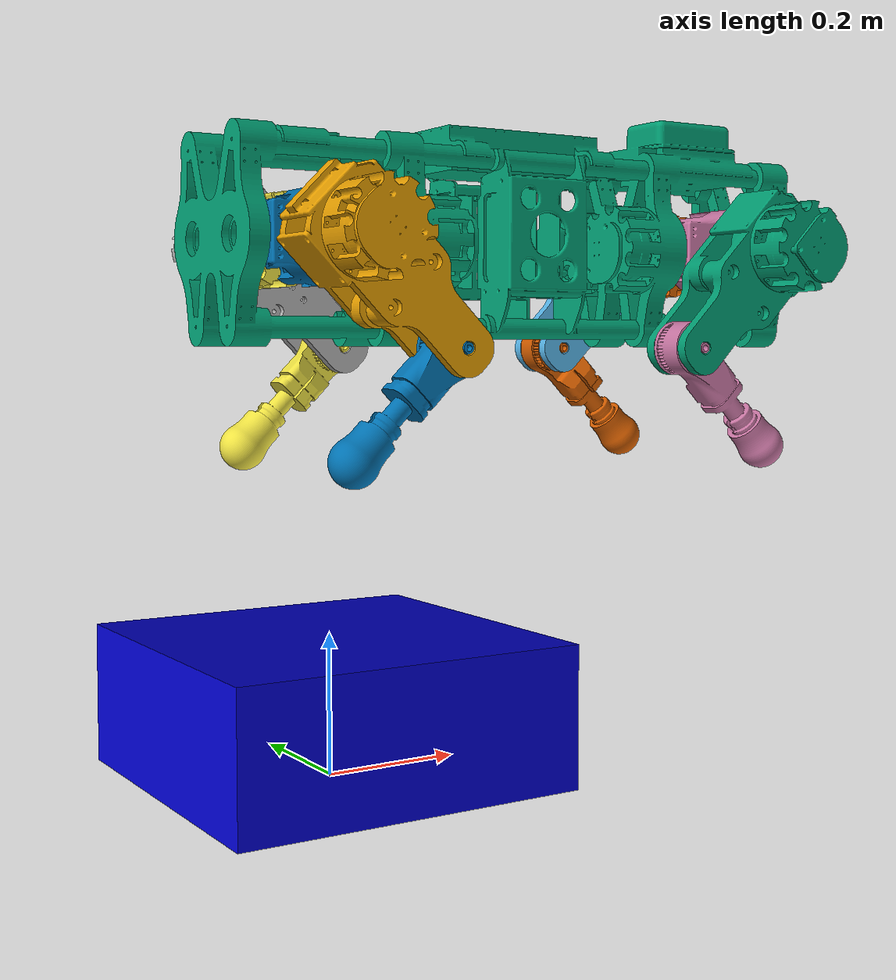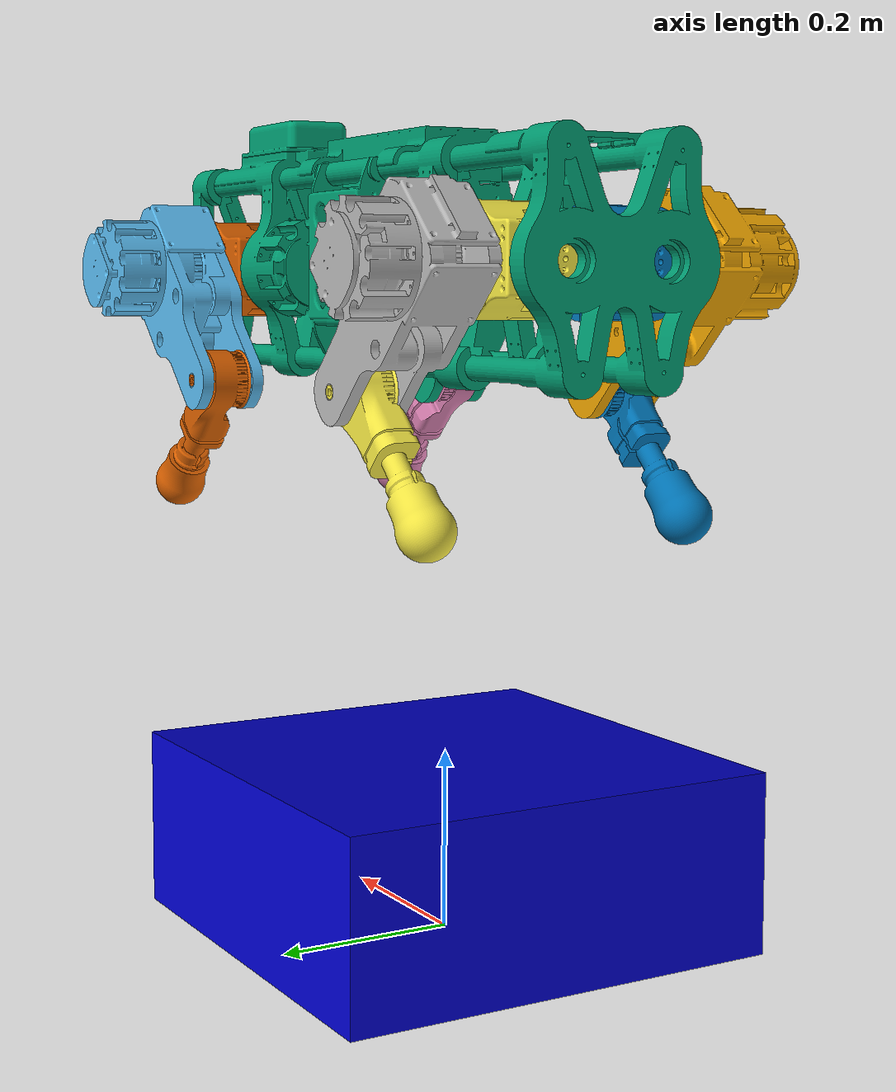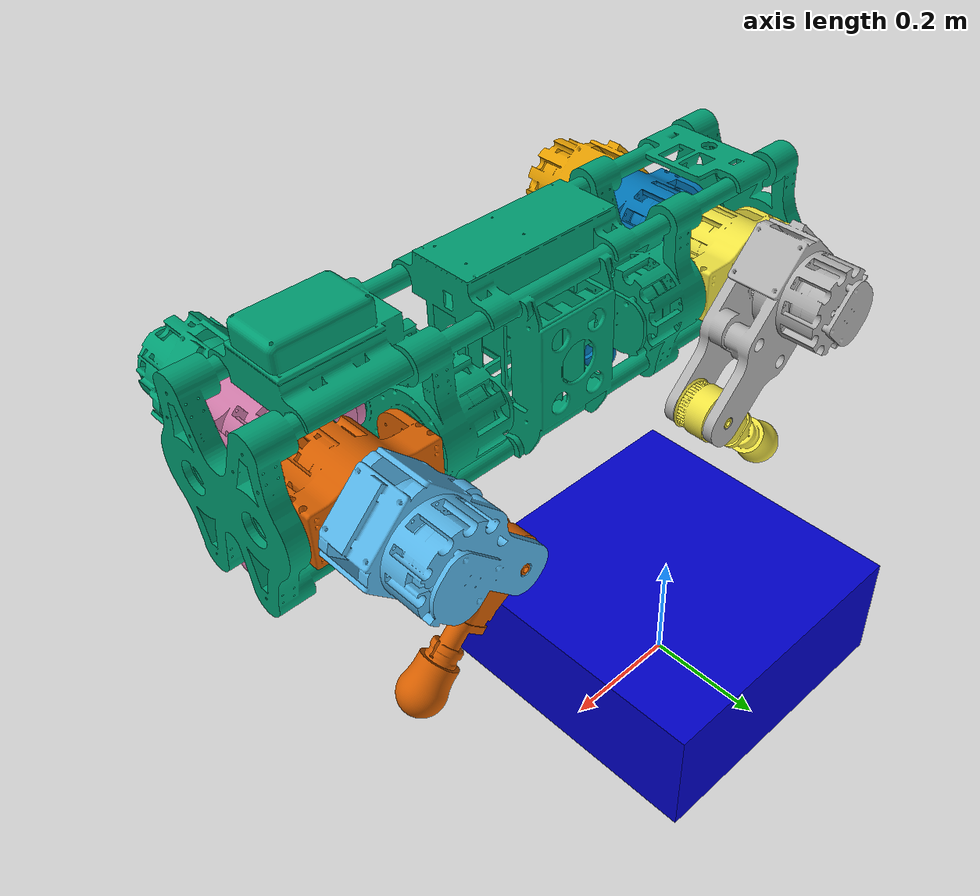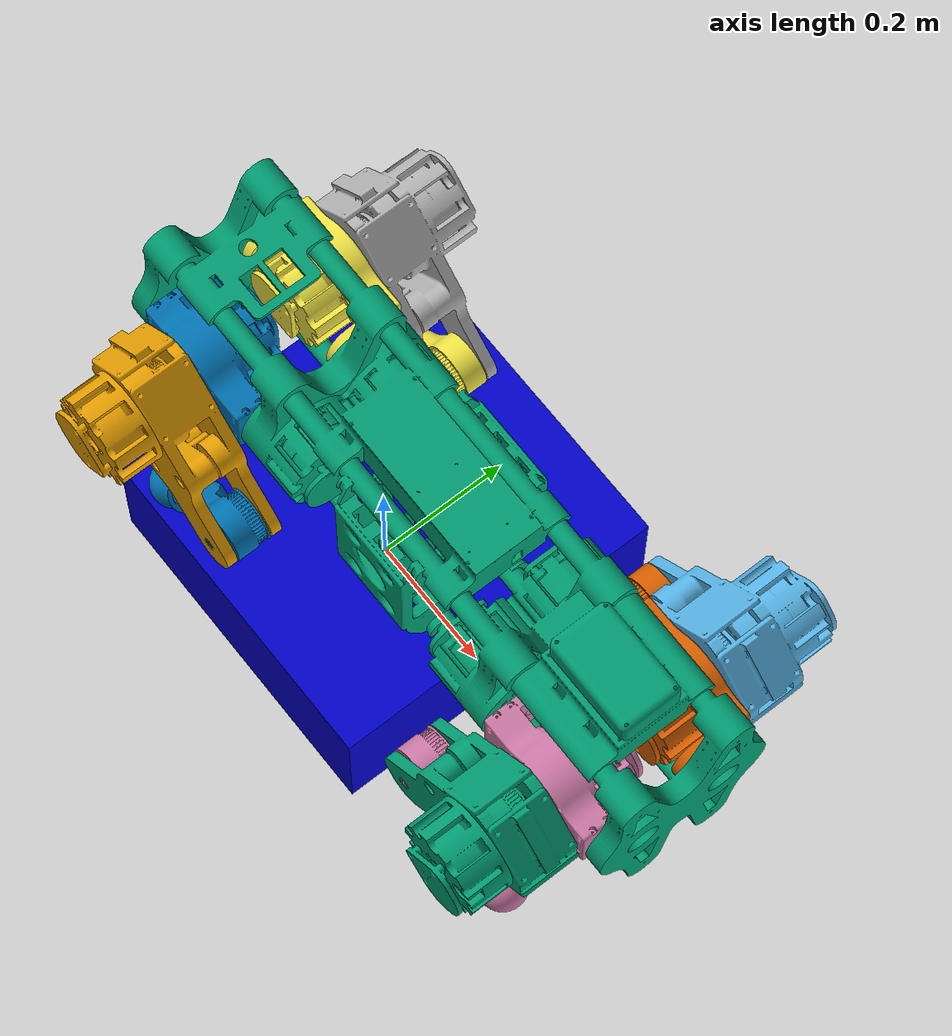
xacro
<?xml version="1.0"?>
<robot xmlns:xacro="http://ros.org/wiki/xacro" name="opendog_nostand">

  <xacro:arg name="prefix" default="" />

  <xacro:include filename="$(find opendog_description)/urdf/opendog.urdf.xacro" />

  <xacro:include filename="$(find odrive_demo_description)/urdf/odrive_opendog.ros2_control.xacro" />

  <!--link name="world"/-->

  <xacro:odrive_ros2_control
    name="ODriveOpenDog"
    joint0_name="$(arg prefix)FL_uleg_joint"
    joint1_name="$(arg prefix)FL_lleg_joint"
    joint2_name="$(arg prefix)FL_hip_joint"
    joint3_name="$(arg prefix)FR_hip_joint"
    joint4_name="$(arg prefix)BL_uleg_joint"
    joint5_name="$(arg prefix)BL_lleg_joint"
    joint6_name="$(arg prefix)FR_uleg_joint"
    joint7_name="$(arg prefix)FR_lleg_joint"
    joint8_name="$(arg prefix)BR_hip_joint"
    joint9_name="$(arg prefix)BL_hip_joint"
    joint10_name="$(arg prefix)BR_uleg_joint"
    joint11_name="$(arg prefix)BR_lleg_joint" />
</robot>

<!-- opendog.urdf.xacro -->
<robot name="opendog_nostand" xmlns:xacro="http://www.ros.org/wiki/xacro">

  <!--     CONFIGURATION ARGUMENTS              -->

  <!-- Hardware interface type selection -->
  <xacro:arg name="use_gazebo" default="false"/>

  <!--     MECHANICAL DESCRIPTION (ALWAYS)      -->

  <!-- Configuration of Robot Links-->

  <!-- Configuration of Robot Joints -->
    <xacro:include filename="$(find opendog_description)/urdf/opendog_stand_links.xacro"/>
  <xacro:include filename="$(find opendog_description)/urdf/opendog_stand_joints.xacro"/>
  <xacro:include filename="$(find opendog_description)/urdf/opendog_links.xacro"/>
  <xacro:include filename="$(find opendog_description)/urdf/opendog_joints.xacro"/>

  <!-- Other Configurations -->
  <xacro:include filename="$(find opendog_description)/urdf/materials.xacro"/>
  <xacro:include filename="$(find opendog_description)/urdf/opendog.trans"/>

  <!--     HARDWARE INTERFACE (CONDITIONAL)     -->

  <!-- In gazebo mode, never load the real hardware interface (CAN) -->
<xacro:unless value="$(arg use_gazebo)">
  <!-- CAN MODE -->
  <xacro:include filename="$(find opendog_hardware_layer_can)/urdf/opendog_ros2_control_can.xacro"/>
  <xacro:opendog_ros2_control_can name="opendog_hw"/>
</xacro:unless>

</robot>

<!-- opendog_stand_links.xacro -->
<robot  xmlns:xacro="http://www.ros.org/wiki/xacro">

 <!-- Stand link definition -->
 <!-- World link -->
 <link name="world"/>
 <!-- Stand link -->

  <link name="stand_link">
  <visual>
    <geometry>
      <box size="0.5 0.5 0.2"/>
    </geometry>
    <material name="green"> <!-- Change the name to avoid conflicts -->
      <color rgba="0 0 0.8 1.0"/>
    </material>
  </visual>
  <collision>
    <geometry>
      <box size="0.5 0.5 0.2"/>
    </geometry>
  </collision>
  <inertial>
    <mass value="100"/>
    <origin xyz="0 0 0"/>
    <inertia ixx="1" iyy="1" izz="1" ixy="0" ixz="0" iyz="0"/>
  </inertial>
  </link>
    <!-- Gazebo - make the stand static so the robot doesn't "spin" in simulation -->
    <gazebo reference="stand_link">
      <static>true</static>
    </gazebo>
</robot>

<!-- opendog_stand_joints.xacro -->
<robot xmlns:xacro="http://www.ros.org/wiki/xacro">

    <!-- Joint entre world et stand -->
<joint name="world_to_stand_link" type="fixed">
  <parent link="world"/>
  <child link="stand_link"/>
  <origin xyz="0 0 0.1" rpy="0 0 0"/> <!-- Cylinder center at 0.5m -->
</joint>
  <!-- Joint fixe entre stand et base_link -->
<joint name="stand_to_base" type="fixed">
  <origin xyz="0 0 0.3" rpy="0 0 0"/>
  <!-- Positioned at the top of the stand (z=0.5 + 0.5 = 1m) -->
  <parent link="stand_link"/>
  <child link="base_link"/>
</joint>

</robot>

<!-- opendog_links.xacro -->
<robot xmlns:xacro="http://www.ros.org/wiki/xacro">

    <xacro:include filename="consts.xacro" />
    <xacro:include filename="physics.xacro" />

    <!-- load meshes -->
    <xacro:macro name="body_mesh">
        <mesh filename="file://$(find opendog_description)/meshes/body.stl" scale="0.001 0.001 0.001"/>
    </xacro:macro>
    <xacro:macro name="rightHip_mesh">
        <mesh filename="file://$(find opendog_description)/meshes/RIGHT_HIP.stl" scale="0.001 0.001 0.001"/>
    </xacro:macro>
    <xacro:macro name="leftHip_mesh">
        <mesh filename="file://$(find opendog_description)/meshes/LEFT_HIP.stl" scale="0.001 0.001 0.001"/>
    </xacro:macro>
    <xacro:macro name="rightUleg_mesh">
        <mesh filename="file://$(find opendog_description)/meshes/RIGHT_ULEG.stl" scale="0.001 0.001 0.001"/>
    </xacro:macro>
    <xacro:macro name="leftUleg_mesh">
        <mesh filename="file://$(find opendog_description)/meshes/LEFT_ULEG.stl" scale="0.001 0.001 0.001"/>
    </xacro:macro>
    <xacro:macro name="lleg_mesh">
        <mesh filename="file://$(find opendog_description)/meshes/LLEG.stl" scale="0.001 0.001 0.001"/>
    </xacro:macro>

    <!-- *********** base link *********** -->

    <link name="base_link">
        <inertial>
          <origin xyz="0 0.0 0" rpy="0 0 0"/>
          <mass value="5"/>
          <inertia ixx="0.761631" iyy="4.077449" izz="3.905689" ixy="-0.001055" iyz="-0.000345" ixz="0.05479"/>
        </inertial>
        <visual>
          <origin xyz="0 0 0" rpy="0 0 0"/>
          <geometry>
            <mesh filename="file://$(find opendog_description)/meshes/base_link.stl" scale="0.001 0.001 0.001"/>
          </geometry>

        </visual>
        <collision>
          <origin xyz="0 0 0" rpy="0 0 0"/>
          <geometry>
            <mesh filename="file://$(find opendog_description)/meshes/base_link.stl" scale="0.001 0.001 0.001"/>
          </geometry>
        </collision>
    </link>

    <!-- !!!!!!!!!!!!!!!!!!!!!!! HIPS !!!!!!!!!!!!!!!!!!!!!!!!!!!! -->

    <!-- *********** FR_hip *********** -->
    <link name="FR_hip_link">
        <inertial>
            <origin xyz="-0.09804953144426388 0.01537887460379041 0.00019055475909179886" rpy="0 0 0"/>
            <mass value="2"/>
            <inertia ixx="0.012708" iyy="0.026996" izz="0.026264" ixy="-0.000651" iyz="8.1e-05" ixz="-1.7e-05"/>
        </inertial>
        <visual>
            <origin xyz="-0.005372 0.029025 -0.34267" rpy="0 0 0"/>
            <geometry>
              <mesh filename="file://$(find opendog_description)/meshes/FR_hip_link_2.stl" scale="0.001 0.001 0.001"/>
            </geometry>

        </visual>
        <collision>
            <origin xyz="-0.005372 0.029025 -0.34267" rpy="0 0 0"/>
            <geometry>
              <mesh filename="file://$(find opendog_description)/meshes/FR_hip_link_2.stl" scale="0.001 0.001 0.001"/>
            </geometry>
        </collision>
    </link>
    <!-- *********** FL_hip ********** -->
    <link name="FL_hip_link">
        <inertial>
            <origin xyz="-0.09804956975710932 -0.015379348802188275 0.00019128110374050378" rpy="0 0 0"/>
            <mass value="2"/>
            <inertia ixx="0.012737" iyy="0.027034" izz="0.026319" ixy="0.000689" iyz="-4.8e-05" ixz="1.1e-05"/>
        </inertial>
        <visual>
            <origin xyz="-0.005091 0.147198 -0.340765" rpy="0 0 0"/>
            <geometry>
              <mesh filename="file://$(find opendog_description)/meshes/FL_hip_link_2.stl" scale="0.001 0.001 0.001"/>
            </geometry>

        </visual>
        <collision>
            <origin xyz="-0.005091 0.147198 -0.340765" rpy="0 0 0"/>
            <geometry>
              <mesh filename="file://$(find opendog_description)/meshes/FL_hip_link_2.stl" scale="0.001 0.001 0.001"/>
            </geometry>
        </collision>
    </link>
    <!-- *********** BR_hip ********** -->
    <link name="BR_hip_link">
        <inertial>
            <origin xyz="0.09804922989186687 0.015379343283856973 0.00019128110374272422" rpy="0 0 0"/>
            <mass value="2"/>
            <inertia ixx="0.012708" iyy="0.027002" izz="0.026258" ixy="0.000651" iyz="5e-05" ixz="-1e-05"/>
        </inertial>
        <visual>
            <origin xyz="-0.471531 0.028918 -0.340765" rpy="0 0 0"/>
            <geometry>
              <mesh filename="file://$(find opendog_description)/meshes/BR_hip_link_2.stl" scale="0.001 0.001 0.001"/>
            </geometry>

        </visual>
        <collision>
            <origin xyz="-0.471531 0.028918 -0.340765" rpy="0 0 0"/>
            <geometry>
              <mesh filename="file://$(find opendog_description)/meshes/BR_hip_link_2.stl" scale="0.001 0.001 0.001"/>
            </geometry>
        </collision>
    </link>
    <!-- *********** BL_hip ********** -->
    <link name="BL_hip_link">
        <inertial>
            <origin xyz="0.09804922228400342 -0.015379345578511366 0.00019128032686782648" rpy="0 0 0"/>
            <mass value="2"/>
            <inertia ixx="0.012784" iyy="0.027006" izz="0.026333" ixy="-0.000657" iyz="-4.9e-05" ixz="-1.1e-05"/>
        </inertial>
        <visual>
            <origin xyz="-0.471531 0.147198 -0.340765" rpy="0 0 0"/>
            <geometry>
              <mesh filename="file://$(find opendog_description)/meshes/BL_hip_link_2.stl" scale="0.001 0.001 0.001"/>
            </geometry>

        </visual>
        <collision>
            <origin xyz="-0.471531 0.147198 -0.340765" rpy="0 0 0"/>
            <geometry>
              <mesh filename="file://$(find opendog_description)/meshes/BL_hip_link_2.stl" scale="0.001 0.001 0.001"/>
            </geometry>
        </collision>
    </link>

    <!-- !!!!!!!!!!!!!!!!!!!!!!! ULEGs !!!!!!!!!!!!!!!!!!!!!!!!!!!! -->

    <!-- *********** FR_uleg ********** -->
    <link name="FR_uleg_link">
        <inertial>
            <origin xyz="0.024785646151847765 0.06031237152858331 -0.02501775170684245" rpy="0 0 0"/>
            <mass value="2.7"/>
            <inertia ixx="0.060385" iyy="0.086191" izz="0.061956" ixy="0.004251" iyz="-0.003909" ixz="0.027901"/>
        </inertial>
        <visual>
            <origin xyz="0.094268 -0.037335 -0.34267" rpy="0 0 0"/>
            <geometry>
              <mesh filename="file://$(find opendog_description)/meshes/FR_uleg_link_2.stl" scale="0.001 0.001 0.001"/>
            </geometry>

        </visual>
        <collision>
            <origin xyz="0.094268 -0.037335 -0.34267" rpy="0 0 0"/>
            <geometry>
              <mesh filename="file://$(find opendog_description)/meshes/FR_uleg_link_2.stl" scale="0.001 0.001 0.001"/>
            </geometry>
        </collision>
    </link>
    <!-- *********** FL_uleg ********** -->
    <link name="FL_uleg_link">
        <inertial>
            <origin xyz="0.02578305194465416 -0.06037459079064242 -0.02602287407328735" rpy="0 0 0"/>
            <mass value="2.7"/>
            <inertia ixx="0.051391" iyy="0.085806" izz="0.071334" ixy="-0.006201" iyz="0.003973" ixz="0.025851"/>
        </inertial>
        <visual>
            <origin xyz="0.094549 0.213558 -0.340765" rpy="0 0 0"/>
            <geometry>
              <mesh filename="file://$(find opendog_description)/meshes/FL_uleg_link_2.stl" scale="0.001 0.001 0.001"/>
            </geometry>

        </visual>
        <collision>
            <origin xyz="0.094549 0.213558 -0.340765" rpy="0 0 0"/>
            <geometry>
              <mesh filename="file://$(find opendog_description)/meshes/FL_uleg_link_2.stl" scale="0.001 0.001 0.001"/>
            </geometry>
        </collision>
    </link>
    <!-- *********** BR_uleg ********** -->
    <link name="BR_uleg_link">
        <inertial>
            <origin xyz="-0.02478596816754486 0.060312838896795826 -0.025017037989093105" rpy="0 0 0"/>
            <mass value="2.7"/>
            <inertia ixx="0.061911" iyy="0.085831" izz="0.060788" ixy="-0.005251" iyz="-0.005031" ixz="-0.027715"/>
        </inertial>
        <visual>
            <origin xyz="-0.571171 -0.037442 -0.340765" rpy="0 0 0"/>
            <geometry>
              <mesh filename="file://$(find opendog_description)/meshes/BR_uleg_link_2.stl" scale="0.001 0.001 0.001"/>
            </geometry>

        </visual>
        <collision>
            <origin xyz="-0.571171 -0.037442 -0.340765" rpy="0 0 0"/>
            <geometry>
              <mesh filename="file://$(find opendog_description)/meshes/BR_uleg_link_2.stl" scale="0.001 0.001 0.001"/>
            </geometry>
        </collision>
    </link>
    <!-- *********** BL_uleg ********** -->
    <link name="BL_uleg_link">
        <inertial>
            <origin xyz="-0.024912930584652382 -0.06035054910971113 -0.02514445341334004" rpy="0 0 0"/>
            <mass value="2.7"/>
            <inertia ixx="0.061226" iyy="0.085803" izz="0.061502" ixy="0.005391" iyz="0.005035" ixz="-0.027705"/>
        </inertial>
        <visual>
            <origin xyz="-0.571171 0.213558 -0.340765" rpy="0 0 0"/>
            <geometry>
              <mesh filename="file://$(find opendog_description)/meshes/BL_uleg_link_2.stl" scale="0.001 0.001 0.001"/>
            </geometry>

        </visual>
        <collision>
            <origin xyz="-0.571171 0.213558 -0.340765" rpy="0 0 0"/>
            <geometry>
              <mesh filename="file://$(find opendog_description)/meshes/BL_uleg_link_2.stl" scale="0.001 0.001 0.001"/>
            </geometry>
        </collision>
    </link>

    <!-- !!!!!!!!!!!!!!!!!!!!!!! LLEGs !!!!!!!!!!!!!!!!!!!!!!!!!!!! -->

    <!-- *********** FR_lleg ********** -->
    <link name="FR_lleg_link">
        <inertial>
            <origin xyz="-0.06309907279078683 -0.04027150228827056 -0.06310352710956241" rpy="0 0 0"/>
            <mass value="0.3"/>
            <inertia ixx="0.007726" iyy="0.021253" izz="0.015039" ixy="0.000248" iyz="0.00018" ixz="-0.008798"/>
        </inertial>
        <visual>
            <origin xyz="-0.0467 -0.119335 -0.201701" rpy="0 0 0"/>
            <geometry>
              <mesh filename="file://$(find opendog_description)/meshes/FR_lleg_link_2.stl" scale="0.001 0.001 0.001"/>
            </geometry>

        </visual>
        <collision>
            <origin xyz="-0.0467 -0.119335 -0.201701" rpy="0 0 0"/>
            <geometry>
              <mesh filename="file://$(find opendog_description)/meshes/FR_lleg_link_2.stl" scale="0.001 0.001 0.001"/>
            </geometry>
        </collision>
    </link>
    <!-- *********** FL_lleg ********** -->
    <link name="FL_lleg_link">
        <inertial>
            <origin xyz="-0.06309910896868268 0.04027103185737707 -0.06310379848106407" rpy="0 0 0"/>
            <mass value="0.3"/>
            <inertia ixx="0.010996" iyy="0.029242" izz="0.019764" ixy="0.000158" iyz="0.000113" ixz="-0.012783"/>
        </inertial>
        <visual>
            <origin xyz="-0.046419 0.295558 -0.199797" rpy="0 0 0"/>
            <geometry>
              <mesh filename="file://$(find opendog_description)/meshes/FL_lleg_link_2.stl" scale="0.001 0.001 0.001"/>
            </geometry>

        </visual>
        <collision>
            <origin xyz="-0.046419 0.295558 -0.199797" rpy="0 0 0"/>
            <geometry>
              <mesh filename="file://$(find opendog_description)/meshes/FL_lleg_link_2.stl" scale="0.001 0.001 0.001"/>
            </geometry>
        </collision>
    </link>
      <!-- *********** BR_lleg ********** -->
    <link name="BR_lleg_link">
        <inertial>
            <origin xyz="0.06309976910343829 -0.04027103737571108 -0.06310379848106251" rpy="0 0 0"/>
            <mass value="0.3"/>
            <inertia ixx="0.006577" iyy="0.021257" izz="0.016183" ixy="0.00012" iyz="-6.8e-05" ixz="0.00823"/>
        </inertial>
        <visual>
            <origin xyz="-0.430202 -0.119442 -0.199797" rpy="0 0 0"/>
            <geometry>
              <mesh filename="file://$(find opendog_description)/meshes/BR_lleg_link_2.stl" scale="0.001 0.001 0.001"/>
            </geometry>

        </visual>
        <collision>
            <origin xyz="-0.430202 -0.119442 -0.199797" rpy="0 0 0"/>
            <geometry>
              <mesh filename="file://$(find opendog_description)/meshes/BR_lleg_link_2.stl" scale="0.001 0.001 0.001"/>
            </geometry>
        </collision>
    </link>
    <!-- *********** BL_lleg ********** -->
    <link name="BL_lleg_link">
        <inertial>
            <origin xyz="0.06309976363052966 0.040271031313545036 -0.06310380154178746" rpy="0 0 0"/>
            <mass value="0.3"/>
            <inertia ixx="0.006615" iyy="0.021256" izz="0.016145" ixy="-0.000143" iyz="8.3e-05" ixz="0.008252"/>
        </inertial>
        <visual>
            <origin xyz="-0.430202 0.295558 -0.199797" rpy="0 0 0"/>
            <geometry>
              <mesh filename="file://$(find opendog_description)/meshes/BL_lleg_link_2.stl" scale="0.001 0.001 0.001"/>
            </geometry>

        </visual>
        <collision>
            <origin xyz="-0.430202 0.295558 -0.199797" rpy="0 0 0"/>
            <geometry>
              <mesh filename="file://$(find opendog_description)/meshes/BL_lleg_link_2.stl" scale="0.001 0.001 0.001"/>
            </geometry>
            <surface>
                <friction>
                    <ode>
                        <mu>1</mu>
                        <mu2>1</mu2>
                        <fdir1>1 0 0</fdir1>
                    </ode>
                </friction>
            </surface>
        </collision>
    </link>

</robot>

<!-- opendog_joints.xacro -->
<robot xmlns:xacro="http://www.ros.org/wiki/xacro">

    <xacro:include filename="consts.xacro" />

    <!-- *********  FR_hip joint ********* -->
    <joint name="FR_hip_joint" type="revolute">
        <origin xyz="0.005372 -0.029025 0.34267" rpy="0 0 0"/>
        <parent link="base_link"/>
        <child link="FR_hip_link"/>
        <axis xyz="1.0 -0.0 0.0"/>
        <limit upper="0.174533" lower="-0.174533" effort="100" velocity="100"/>
    </joint>
    <!-- *********  FL_hip  ********* -->
    <joint name="FL_hip_joint" type="revolute">
        <origin xyz="0.005091 -0.147198 0.340765" rpy="0 0 0"/>
        <parent link="base_link"/>
        <child link="FL_hip_link"/>
        <axis xyz="-1.0 0.0 -0.0"/>
        <limit upper="0.174533" lower="-0.174533" effort="100" velocity="100"/>
    </joint>
    <!-- *********  BR_hip  ********* -->
    <joint name="BR_hip_joint" type="revolute">
        <origin xyz="0.471531 -0.028918 0.340765" rpy="0 0 0"/>
        <parent link="base_link"/>
        <child link="BR_hip_link"/>
        <axis xyz="1.0 -0.0 -0.0"/>
        <limit upper="0.174533" lower="-0.174533" effort="100" velocity="100"/>
    </joint>
    <!-- *********  BL_hip  ********* -->
    <joint name="BL_hip_joint" type="revolute">
        <origin xyz="0.471531 -0.147198 0.340765" rpy="0 0 0"/>
        <parent link="base_link"/>
        <child link="BL_hip_link"/>
        <axis xyz="-1.0 0.0 0.0"/>
        <limit upper="0.174533" lower="-0.174533" effort="100" velocity="100"/>
    </joint>

    <!-- *********  FR_uleg joint ********* -->
    <joint name="FR_uleg_joint" type="revolute">
        <origin xyz="-0.09964 0.06636 0.0" rpy="0 0 0"/>
        <parent link="FR_hip_link"/>
        <child link="FR_uleg_link"/>
        <axis xyz="-0.0 1.0 0.0"/>
        <limit upper="1.221730" lower="-2.356194" effort="100" velocity="100"/>
    </joint>
    <!-- *********  FL_uleg  ********* -->
    <joint name="FL_uleg_joint" type="revolute">
        <origin xyz="-0.09964 -0.06636 0.0" rpy="0 0 0"/>
        <parent link="FL_hip_link"/>
        <child link="FL_uleg_link"/>
        <axis xyz="-0.0 1.0 -0.0"/>
        <limit upper="1.221730" lower="-2.356194" effort="100" velocity="100"/>
    </joint>
    <!-- *********  BR_uleg  ********* -->
    <joint name="BR_uleg_joint" type="revolute">
        <origin xyz="0.09964 0.06636 0.0" rpy="0 0 0"/>
        <parent link="BR_hip_link"/>
        <child link="BR_uleg_link"/>
        <axis xyz="-0.0 -1.0 -0.0"/>
        <limit upper="1.221730" lower="-2.356194" effort="100" velocity="100"/>
    </joint>
    <!-- *********  BL_uleg  ********* -->
    <joint name="BL_uleg_joint" type="revolute">
        <origin xyz="0.09964 -0.06636 0.0" rpy="0 0 0"/>
        <parent link="BL_hip_link"/>
        <child link="BL_uleg_link"/>
        <axis xyz="0.0 -1.0 0.0"/>
        <limit upper="1.221730" lower="-2.356194" effort="100" velocity="100"/>
    </joint>

    <!-- *********  FR_lleg  ********* -->
    <joint name="FR_lleg_joint" type="revolute">
        <origin xyz="0.140968 0.082 -0.140969" rpy="0 0 0"/>
        <parent link="FR_uleg_link"/>
        <child link="FR_lleg_link"/>
        <axis xyz="-0.0 -1.0 0.0"/>
        <limit upper="3.839724" lower="-0.698132" effort="100" velocity="100"/>
    </joint>
    <!-- *********  FL_lleg  ********* -->
    <joint name="FL_lleg_joint" type="revolute">
        <origin xyz="0.140968 -0.082 -0.140968" rpy="0 0 0"/>
        <parent link="FL_uleg_link"/>
        <child link="FL_lleg_link"/>
        <axis xyz="-0.0 -1.0 -0.0"/>
        <limit upper="3.839724" lower="-0.698132" effort="100" velocity="100"/>
    </joint>
    <!-- *********  BR_lleg  ********* -->
    <joint name="BR_lleg_joint" type="revolute">
        <origin xyz="-0.140969 0.082 -0.140968" rpy="0 0 0"/>
        <parent link="BR_uleg_link"/>
        <child link="BR_lleg_link"/>
        <axis xyz="-0.0 1.0 -0.0"/>
        <limit upper="3.839724" lower="-0.698132" effort="100" velocity="100"/>
    </joint>
    <!-- *********  BL_lleg  ********* -->
    <joint name="BL_lleg_joint" type="revolute">
        <origin xyz="-0.140969 -0.082 -0.140968" rpy="0 0 0"/>
        <parent link="BL_uleg_link"/>
        <child link="BL_lleg_link"/>
        <axis xyz="0.0 1.0 0.0"/>
        <limit upper="3.839724" lower="-0.698132" effort="100" velocity="100"/>
    </joint>

</robot>

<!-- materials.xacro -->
<robot name="opendog" xmlns:xacro="http://www.ros.org/wiki/xacro" >

<material name="silver">
  <color rgba="0.700 0.700 0.700 1.000"/>
</material>

</robot>
